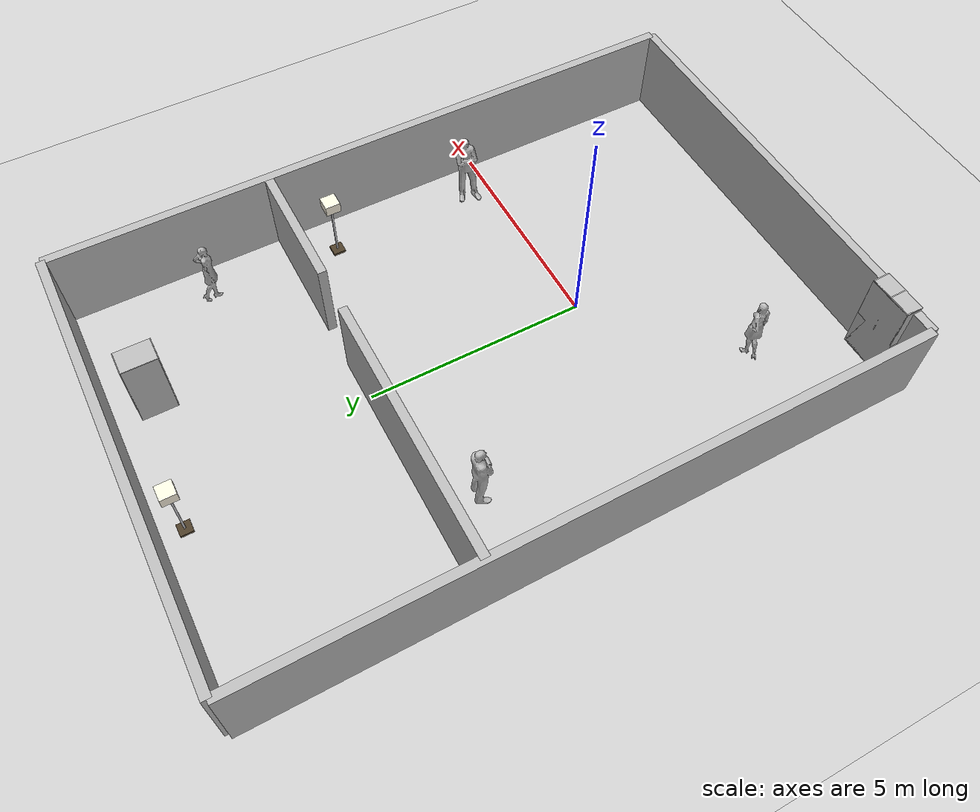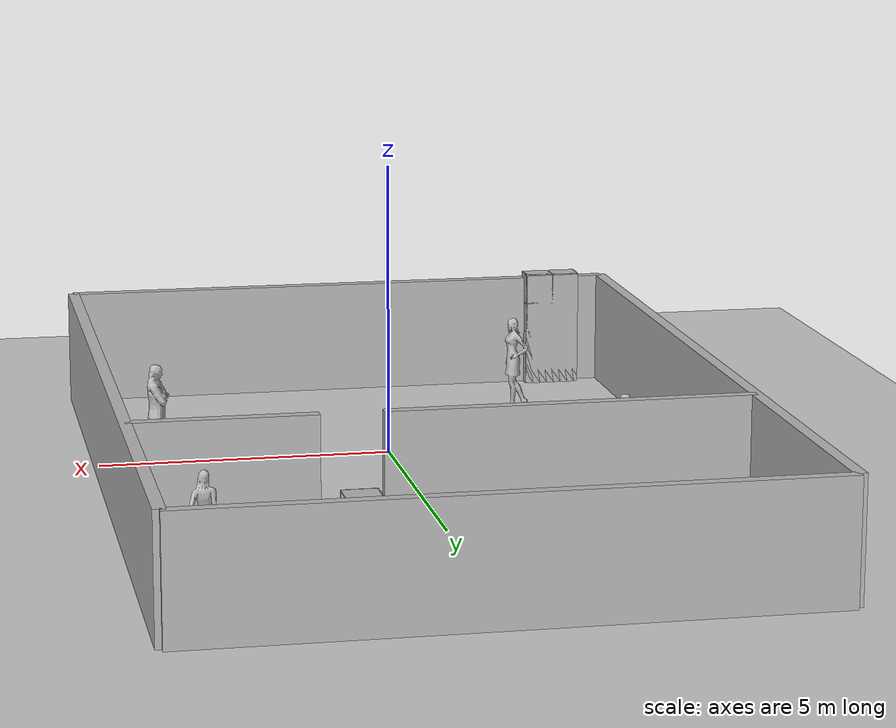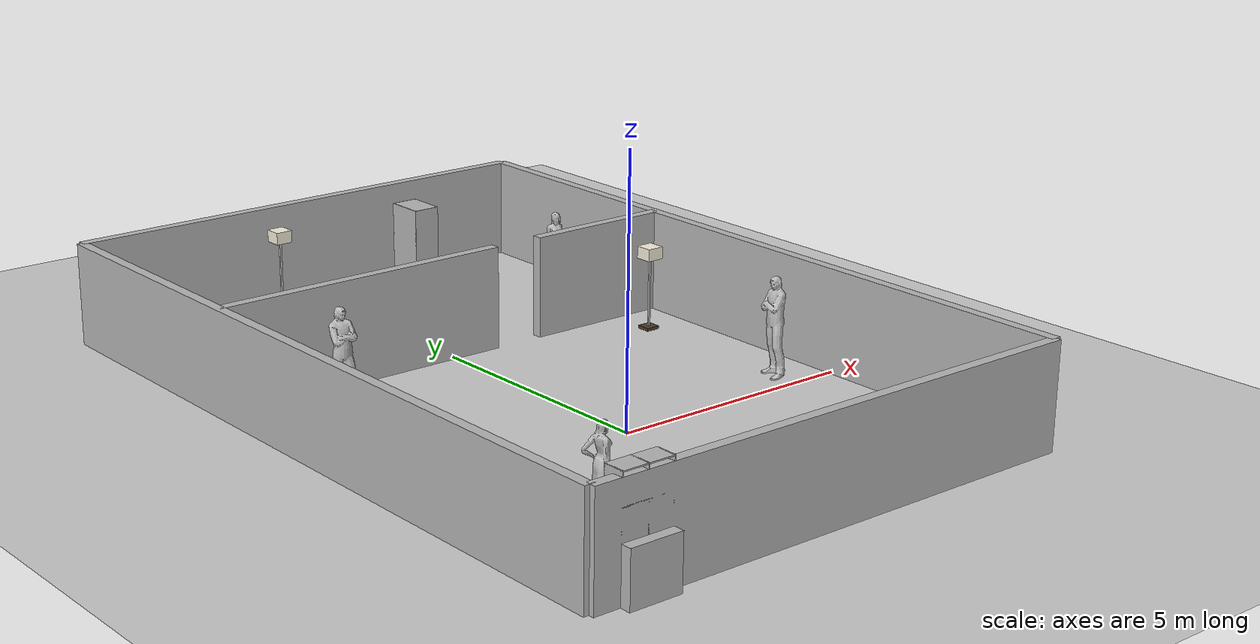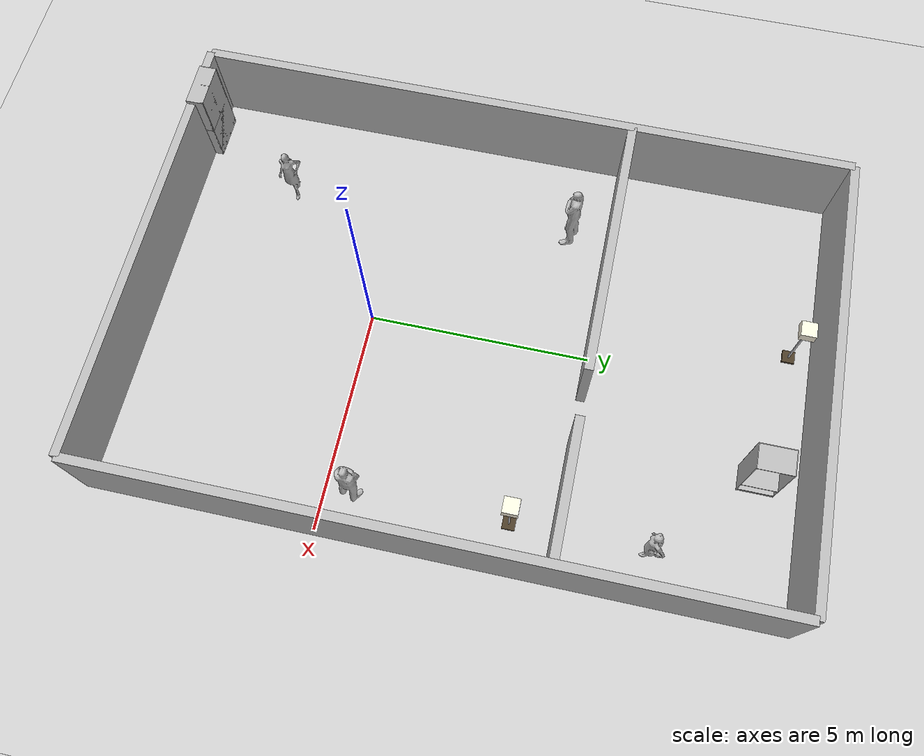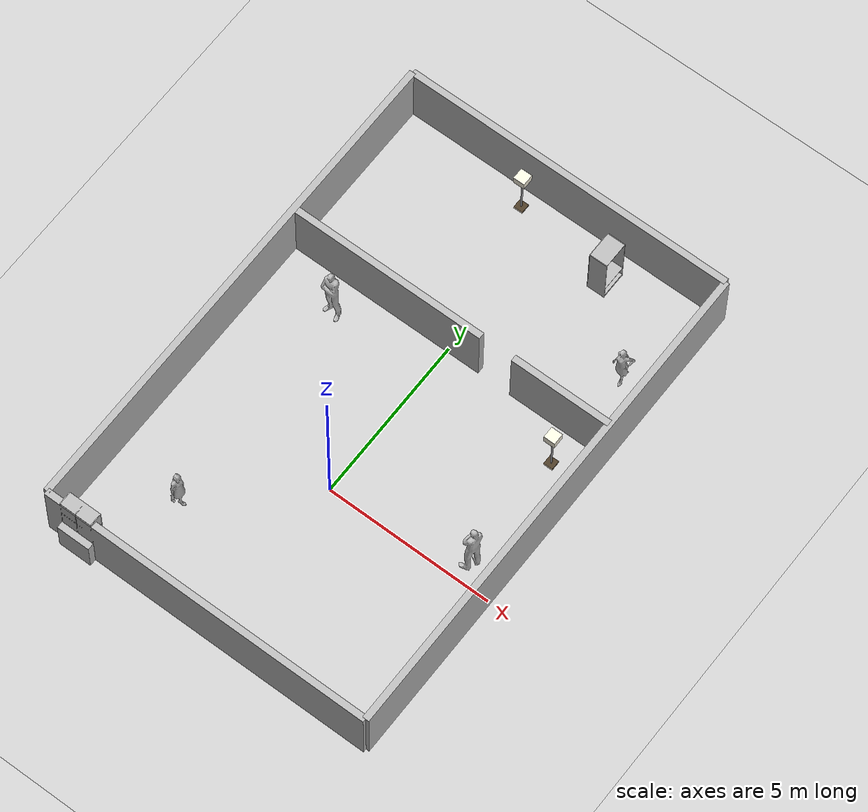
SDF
<sdf version="1.4">
 <world name="default">
  <physics type="ode">
   <gravity>0 0 -9.81</gravity>
   <ode>
    <solver><type>quick</type><iters>20</iters><sor>1.0</sor></solver>
    <constraints>
     <cfm>0.0</cfm>
     <erp>0.2</erp>
     <contact_max_correcting_vel>100.0</contact_max_correcting_vel>
     <contact_surface_layer>0.0</contact_surface_layer>
    </constraints>
   </ode>
   <real_time_update_rate>1000</real_time_update_rate>
   <max_step_size>0.001</max_step_size>
  </physics>
  <include><uri>model://sun</uri></include>
  <include><uri>model://ground_plane</uri></include>
  <model name="wall_1_model">
   <pose>0 -5 1 0 0 0</pose>
   <static>true</static>
   <link name="wall_1_body">
    <inertial>
     <mass>1.0</mass>
     <inertia><ixx>1.0</ixx><ixy>0.0</ixy><ixz>0.0</ixz><iyy>1.0</iyy><iyz>0.0</iyz><izz>1.0</izz></inertia>
    </inertial>
    <collision name="collision"><geometry><box><size>10 0.2 2</size></box></geometry></collision>
    <visual name="visual"><geometry><box><size>10 0.2 2</size></box></geometry></visual>
   </link>
  </model>
  <model name="wall_2_model">
   <pose>0 10 1 0 0 0</pose>
   <static>true</static>
   <link name="wall_2_body">
    <inertial>
     <mass>1.0</mass>
     <inertia><ixx>1.0</ixx><ixy>0.0</ixy><ixz>0.0</ixz><iyy>1.0</iyy><iyz>0.0</iyz><izz>1.0</izz></inertia>
    </inertial>
    <collision name="collision"><geometry><box><size>10 0.2 2</size></box></geometry></collision>
    <visual name="visual"><geometry><box><size>10 0.2 2</size></box></geometry></visual>
   </link>
  </model>
  <model name="wall_3_model">
   <pose>-5 2.5 1 0 0 0</pose>
   <static>true</static>
   <link name="wall_3_body">
    <inertial>
     <mass>1.0</mass>
     <inertia><ixx>1.0</ixx><ixy>0.0</ixy><ixz>0.0</ixz><iyy>1.0</iyy><iyz>0.0</iyz><izz>1.0</izz></inertia>
    </inertial>
    <collision name="collision"><geometry><box><size>0.2 15 2</size></box></geometry></collision>
    <visual name="visual"><geometry><box><size>0.2 15 2</size></box></geometry></visual>
   </link>
  </model>
  <model name="wall_4_model">
   <pose>5 2.5 1 0 0 0</pose>
   <static>true</static>
   <link name="wall_4_body">
    <inertial>
     <mass>1.0</mass>
     <inertia><ixx>1.0</ixx><ixy>0.0</ixy><ixz>0.0</ixz><iyy>1.0</iyy><iyz>0.0</iyz><izz>1.0</izz></inertia>
    </inertial>
    <collision name="collision"><geometry><box><size>0.2 15 2</size></box></geometry></collision>
    <visual name="visual"><geometry><box><size>0.2 15 2</size></box></geometry></visual>
   </link>
  </model>
  <model name="wall_5_model">
   <pose>-2 5 1 0 0 0</pose>
   <static>true</static>
   <link name="wall_5_body">
    <inertial>
     <mass>1.0</mass>
     <inertia><ixx>1.0</ixx><ixy>0.0</ixy><ixz>0.0</ixz><iyy>1.0</iyy><iyz>0.0</iyz><izz>1.0</izz></inertia>
    </inertial>
    <collision name="collision"><geometry><box><size>6 0.2 2</size></box></geometry></collision>
    <visual name="visual"><geometry><box><size>6 0.2 2</size></box></geometry></visual>
   </link>
  </model>
  <model name="wall_6_model">
   <pose>3.5 5 1 0 0 0</pose>
   <static>true</static>
   <link name="wall_6_body">
    <inertial>
     <mass>1.0</mass>
     <inertia><ixx>1.0</ixx><ixy>0.0</ixy><ixz>0.0</ixz><iyy>1.0</iyy><iyz>0.0</iyz><izz>1.0</izz></inertia>
    </inertial>
    <collision name="collision"><geometry><box><size>3 0.2 2</size></box></geometry></collision>
    <visual name="visual"><geometry><box><size>3 0.2 2</size></box></geometry></visual>
   </link>
  </model>
  <include>
   <uri>model://wardrobe</uri>
   <pose>2.000000 9.000000 0.000000 0.000000 0.000000 0.000000</pose>
  </include>
  <include>
   <uri>model://closet</uri>
   <pose>-4.000000 -5.000000 0.000000 0.000000 0.000000 0.000000</pose>
  </include>
  <include>
   <name>floor_lamp_0</name>
   <uri>model://floor_lamp</uri>
   <pose>-1.000000 9.417350 0.000000 0.000000 0.000000 0.000000</pose>
  </include>
  <include>
   <name>floor_lamp_1</name>
   <uri>model://floor_lamp</uri>
   <pose>4.000000 4.00000 0.000000 0.000000 0.000000 0.000000</pose>
  </include>
  <include>
   <name>male03</name>
   <uri>model://citizen_extras_male_03</uri>
   <pose>4.0 0.53 0.01 0.0125 0.0023 -1.718</pose>
  </include>
  <light type="point" name="male03light">
   <pose>3.6 0.53 1.6 0 0 0</pose>
   <diffuse>0.5 0.5 0.5 1</diffuse>
   <specular>0.1 0.1 0.1 1</specular>
   <attenuation>
    <range>1.0</range>
    <linear>0.01</linear>
    <constant>0.3</constant>
    <quadratic>0.0</quadratic>
   </attenuation>
   <direction>0 0 -1</direction>
   <spot><inner_angle>0.6</inner_angle><outer_angle>0.8</outer_angle><falloff>1.2</falloff></spot>
   <cast_shadows>false</cast_shadows>
  </light>
  <include>
   <name>female02</name>
   <uri>model://citizen_extras_female_02</uri>
   <pose>-2.84 -2.63 0.01 0 -0.025 1.683</pose>
  </include>
  <light type="point" name="female02light">
   <pose>-2.5 -2.63 1.5 0 0 0</pose>
   <diffuse>0.5 0.5 0.5 1</diffuse>
   <specular>0.1 0.1 0.1 1</specular>
   <attenuation>
    <range>1.0</range>
    <linear>0.01</linear>
    <constant>0.3</constant>
    <quadratic>0.0</quadratic>
   </attenuation>
   <direction>0 0 -1</direction>
   <spot><inner_angle>0.6</inner_angle><outer_angle>0.8</outer_angle><falloff>1.2</falloff></spot>
   <cast_shadows>false</cast_shadows>
  </light>
  <light type="point" name="female03light">
   <pose>-3.0 6.2 1.5 0 0 0</pose>
   <diffuse>0.5 0.5 0.5 1</diffuse>
   <specular>0.1 0.1 0.1 1</specular>
   <attenuation>
    <range>1.0</range>
    <linear>0.01</linear>
    <constant>0.3</constant>
    <quadratic>0.0</quadratic>
   </attenuation>
   <direction>0 0 -1</direction>
   <spot><inner_angle>0.6</inner_angle><outer_angle>0.8</outer_angle><falloff>1.2</falloff></spot>
   <cast_shadows>false</cast_shadows>
  </light>
  <include>
   <name>female02bis</name>
   <uri>model://citizen_extras_female_02</uri>
   <pose>4.000000 7.000000 0.000000 0.000000 0.000000 0.000000</pose>
  </include>
  <light type="point" name="female02bislight">
   <pose>3.8 6.7 1.5 0 0 0</pose>
   <diffuse>0.5 0.5 0.5 1</diffuse>
   <specular>0.1 0.1 0.1 1</specular>
   <attenuation>
    <range>1.0</range>
    <linear>0.01</linear>
    <constant>0.3</constant>
    <quadratic>0.0</quadratic>
   </attenuation>
   <direction>0 0 -1</direction>
   <spot><inner_angle>0.6</inner_angle><outer_angle>0.8</outer_angle><falloff>1.2</falloff></spot>
   <cast_shadows>false</cast_shadows>
  </light>
  <include>
   <name>male03bis</name>
   <uri>model://citizen_extras_male_03</uri>
   <pose>-3.000000 4.000000 0.000000 0.000000 0.000000 0.000000</pose>
  </include>
  <light type="point" name="male03bislight">
   <pose>-2.9 3.7 1.5 0 0 0</pose>
   <diffuse>0.5 0.5 0.5 1</diffuse>
   <specular>0.1 0.1 0.1 1</specular>
   <attenuation>
    <range>1.0</range>
    <linear>0.01</linear>
    <constant>0.3</constant>
    <quadratic>0.0</quadratic>
   </attenuation>
   <direction>0 0 -1</direction>
   <spot><inner_angle>0.6</inner_angle><outer_angle>0.8</outer_angle><falloff>1.2</falloff></spot>
   <cast_shadows>false</cast_shadows>
  </light>
 </world>
</sdf>

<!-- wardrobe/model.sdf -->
<sdf version="1.6">
  <model name="rwc2022/wardrobe">
    <static>true</static>
    <link name="1_link">
      <collision name="1_col">
        <geometry>
          <box>
            <size>0.55 0.015 1.76</size>
          </box>
        </geometry>
      </collision>
      <visual name="1_vis">
        <geometry>
          <box>
            <size>0.55 0.015 1.76</size>
          </box>
        </geometry>
      </visual>
      <pose>0.0 -0.39 0.88 0 0 0</pose>
    </link>
    <link name="2_link">
      <collision name="2_col">
        <geometry>
          <box>
            <size>0.55 0.015 1.76</size>
          </box>
        </geometry>
      </collision>
      <visual name="2_vis">
        <geometry>
          <box>
            <size>0.55 0.015 1.76</size>
          </box>
        </geometry>
      </visual>
      <pose>0.0 0.39 0.88 0 0 0</pose>
    </link>
    <link name="3_link">
      <collision name="3_col">
        <geometry>
          <box>
            <size>0.015 0.795 1.76</size>
          </box>
        </geometry>
      </collision>
      <visual name="3_vis">
        <geometry>
          <box>
            <size>0.015 0.795 1.76</size>
          </box>
        </geometry>
      </visual>
      <pose>-0.2675 0.0 0.88 0 0 0</pose>
    </link>
    <link name="4_link">
      <collision name="4_col">
        <geometry>
          <box>
            <size>0.535 0.765 0.015</size>
          </box>
        </geometry>
      </collision>
      <visual name="4_vis">
        <geometry>
          <box>
            <size>0.535 0.765 0.015</size>
          </box>
        </geometry>
      </visual>
      <pose>0.0075 0.0 1.7525 0 0 0</pose>
    </link>
    <link name="5_link">
      <collision name="5_col">
        <geometry>
          <box>
            <size>0.535 0.765 0.02</size>
          </box>
        </geometry>
      </collision>
      <visual name="5_vis">
        <geometry>
          <box>
            <size>0.535 0.765 0.02</size>
          </box>
        </geometry>
      </visual>
      <pose>0.0075 0.0 0.455 0 0 0</pose>
    </link>
    <link name="6_link">
      <collision name="6_col">
        <geometry>
          <box>
            <size>0.535 0.765 0.02</size>
          </box>
        </geometry>
      </collision>
      <visual name="6_vis">
        <geometry>
          <box>
            <size>0.535 0.765 0.02</size>
          </box>
        </geometry>
      </visual>
      <pose>0.0075 0.0 0.095 0 0 0</pose>
    </link>
    <link name="7_link">
      <collision name="7_col">
        <geometry>
          <box>
            <size>0.02 0.77 0.9</size>
          </box>
        </geometry>
      </collision>
      <visual name="7_vis">
        <geometry>
          <box>
            <size>0.02 0.77 0.09</size>
          </box>
        </geometry>
      </visual>
      <pose>0.26 0.0 0.045 0 0 0</pose>
    </link>
    <link name="in_front_of">
      <virtual_volume name="in_front_of_vv">
        <geometry>
          <box>
            <size>0.2 0.2975 0.01</size>
          </box>
        </geometry>
        <pose>0.775 0.0 0.005 0 0 0</pose>
      </virtual_volume>
    </link>
    <link name="shelf1">
      <virtual_volume name="shelf1_vv">
        <geometry>
          <box>
            <size>0.515 0.705 0.25</size>
          </box>
        </geometry>
        <pose>0.0075 0.0 0.25 0 0 0</pose>
      </virtual_volume>
    </link>
    <link name="shelf2">
      <virtual_volume name="shelf2_vv">
        <geometry>
          <box>
            <size>0.515 0.705 0.25</size>
          </box>
        </geometry>
        <pose>0.0075 0.0 0.61 0 0 0</pose>
      </virtual_volume>
    </link>
    <link name="on_top_of">
      <virtual_volume name="on_top_of_vv">
        <geometry>
          <box>
            <size>0.515 0.705 0.25</size>
          </box>
        </geometry>
        <pose>0.0075 0.0 0.61 0 0 0</pose>
      </virtual_volume>
    </link>
  </model>
</sdf>

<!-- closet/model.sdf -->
<sdf version="1.6">
  <model name="reo2016/closet">
    <link name="1_link">
      <collision name="1_col">
        <geometry>
          <box>
            <size>1.0 0.6 0.995</size>
          </box>
        </geometry>
      </collision>
      <visual name="1_vis">
        <geometry>
          <box>
            <size>1.0 0.6 0.995</size>
          </box>
        </geometry>
      </visual>
      <pose>0 0 0.4975 0 0 0</pose>
    </link>
    <link name="2_link">
      <collision name="2_col">
        <geometry>
          <box>
            <size>0.022 0.4 1.1</size>
          </box>
        </geometry>
      </collision>
      <visual name="2_vis">
        <geometry>
          <box>
            <size>0.022 0.4 1.1</size>
          </box>
        </geometry>
      </visual>
      <pose>-0.489 0.1 1.545 0 0 0</pose>
    </link>
    <link name="3_link">
      <collision name="3_col">
        <geometry>
          <box>
            <size>0.022 0.4 1.1</size>
          </box>
        </geometry>
      </collision>
      <visual name="3_vis">
        <geometry>
          <box>
            <size>0.022 0.4 1.1</size>
          </box>
        </geometry>
      </visual>
      <pose>0.0 0.1 1.545 0 0 0</pose>
    </link>
    <link name="4_link">
      <collision name="4_col">
        <geometry>
          <box>
            <size>0.022 0.4 1.1</size>
          </box>
        </geometry>
      </collision>
      <visual name="4_vis">
        <geometry>
          <box>
            <size>0.022 0.4 1.1</size>
          </box>
        </geometry>
      </visual>
      <pose>0.489 0.1 1.545 0 0 0</pose>
    </link>
    <link name="5_link">
      <collision name="5_col">
        <geometry>
          <box>
            <size>1.0 0.4 0.022</size>
          </box>
        </geometry>
      </collision>
      <visual name="5_vis">
        <geometry>
          <box>
            <size>1.0 0.4 0.022</size>
          </box>
        </geometry>
      </visual>
      <pose>0.0 0.1 1.541 0 0 0</pose>
    </link>
    <link name="6_link">
      <collision name="6_col">
        <geometry>
          <box>
            <size>1.0 0.4 0.022</size>
          </box>
        </geometry>
      </collision>
      <visual name="6_vis">
        <geometry>
          <box>
            <size>1.0 0.4 0.022</size>
          </box>
        </geometry>
      </visual>
      <pose>0.0 0.1 2.084 0 0 0</pose>
    </link>
    <link name="7_link">
      <collision name="7_col">
        <geometry>
          <box>
            <size>1.0 0.022 2.095</size>
          </box>
        </geometry>
      </collision>
      <visual name="7_vis">
        <geometry>
          <box>
            <size>1.0 0.022 2.095</size>
          </box>
        </geometry>
      </visual>
      <pose>0.0 0.289 1.0475 0 0 0</pose>
    </link>
    <link name="on_top_of">
      <virtual_volume name="on_top_of_vv">
        <geometry>
          <box>
            <size>1.0 0.55 0.215</size>
          </box>
        </geometry>
        <pose>0.0 0.025 1.1425 0 0 0</pose>
      </virtual_volume>
    </link>
    <link name="in_front_of">
      <virtual_volume name="in_front_of_vv">
        <geometry>
          <box>
            <size>1.0 0.2 0.01</size>
          </box>
        </geometry>
        <pose>0.0 -1.0 0.005 0 0 0</pose>
      </virtual_volume>
    </link>
    <static>true</static>
  </model>
</sdf>

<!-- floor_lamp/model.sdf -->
<sdf version="1.9">
  <model name="floor_lamp">
    <static>true</static>
    <link name="body">

      <collision name="base_collision">
        <pose>0 0 0.03 0 0 0</pose>
        <geometry><box><size>0.28 0.28 0.06</size></box></geometry>
      </collision>
      <collision name="stem_collision">
        <pose>0 0 0.80 0 0 0</pose>
        <geometry><box><size>0.04 0.04 1.50</size></box></geometry>
      </collision>
      <collision name="shade_collision">
        <pose>0 0 1.55 0 0 0</pose>
        <geometry><box><size>0.34 0.34 0.24</size></box></geometry>
      </collision>
      <visual name="base_visual">
        <pose>0 0 0.03 0 0 0</pose>
        <geometry><box><size>0.28 0.28 0.06</size></box></geometry>
        <material>
          <ambient>0.20 0.16 0.11 1</ambient>
          <diffuse>0.30 0.24 0.16 1</diffuse>
        </material>
      </visual>

      <visual name="stem_visual">
        <pose>0 0 0.80 0 0 0</pose>
        <geometry><box><size>0.04 0.04 1.50</size></box></geometry>
        <material><ambient>0.62 0.62 0.63 1</ambient><diffuse>0.78 0.78 0.80 1</diffuse></material>
      </visual>
      <visual name="shade_visual">
        <pose>0 0 1.55 0 0 0</pose>
        <geometry><box><size>0.34 0.34 0.24</size></box></geometry>
        <material><ambient>0.92 0.89 0.80 1</ambient><diffuse>0.98 0.95 0.87 1</diffuse></material>
      </visual>

    </link>
  </model>
</sdf>

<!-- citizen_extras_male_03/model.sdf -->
<sdf version="1.4">

 <model name="citizen_extras_male_03">

    <link name="link">

     <inertial>

       <mass>20</mass>

       <inertia>

         <ixx>0.0</ixx>

         <ixy>0.0</ixy>

         <ixz>0.0</ixz>

         <iyy>0.0</iyy>

         <iyz>0.0</iyz>

         <izz>0.0</izz>

       </inertia>

     </inertial>

     <collision name="collision">

       <pose>0 0 0 0 0 0</pose>

       <geometry>

         <mesh>

           <uri>model://citizen_extras_male_03/meshes/mesh.dae</uri>

         </mesh>

       </geometry>

     </collision>

     <visual name="visual">

       <pose>0 0 0 0 0 0</pose>

       <geometry>

         <mesh>

           <uri>model://citizen_extras_male_03/meshes/mesh.dae</uri>

         </mesh>

       </geometry>

     </visual>

    </link>

 </model>
</sdf>

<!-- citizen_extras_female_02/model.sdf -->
<sdf version="1.4">

 <model name="citizen_extras_female_02">

    <link name="link">

     <inertial>

       <mass>20</mass>

       <inertia>

         <ixx>0.0</ixx>

         <ixy>0.0</ixy>

         <ixz>0.0</ixz>

         <iyy>0.0</iyy>

         <iyz>0.0</iyz>

         <izz>0.0</izz>

       </inertia>

     </inertial>

     <collision name="collision">

       <pose>0 0 0 0 0 0</pose>

       <geometry>

         <mesh>

           <uri>model://citizen_extras_female_02/meshes/mesh.dae</uri>

         </mesh>

       </geometry>

     </collision>

     <visual name="visual">

       <pose>0 0 0 0 0 0</pose>

       <geometry>

         <mesh>

           <uri>model://citizen_extras_female_02/meshes/mesh.dae</uri>

         </mesh>

       </geometry>

     </visual>

    </link>

 </model>
</sdf>
